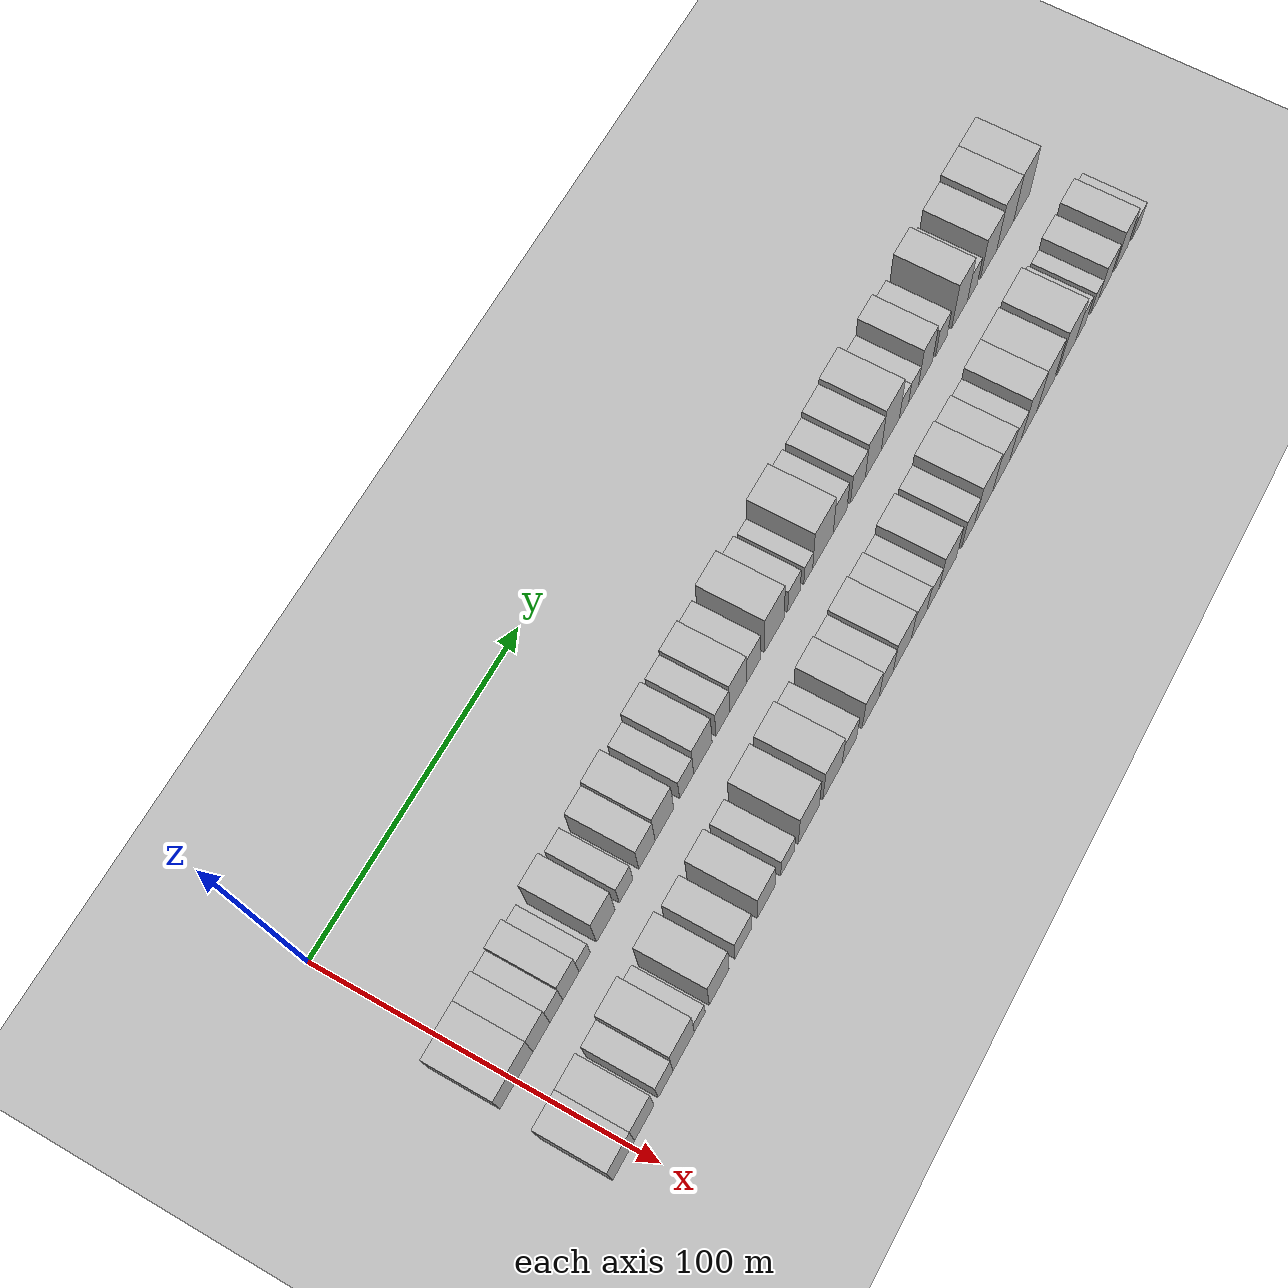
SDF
<sdf version="1.6">
 <world name="default">
  <include><name>ground_plane_1</name><uri>model://HANNAS_ground_plane</uri></include>
  <include>
   <name>ground_plane_2</name>
   <uri>model://HANNAS_ground_plane</uri>
   <pose>100 0 0  0 0 0</pose>
  </include>
  <model name="building_32">
   <static>1</static>
   <pose>50.0000 -4.1049 0 0.000000 0.000000 0.000000</pose>
   <link name="link">
    <pose>0 0 7.50 0 0 0</pose>
    <collision name="collision"><geometry><box><size>20.0000 6.8079 15.0000</size></box></geometry></collision>
    <visual name="visual">
     <cast_shadows>0</cast_shadows>
     <geometry><box><size>20.0000 6.8079 15.0000</size></box></geometry>
     <material>
      <script>
       <uri>model://HANNAS_wall/materials/scripts</uri>
       <uri>model://HANNAS_wall/materials/textures</uri>
       <name>vrc/HANNAS_wall</name>
      </script>
     </material>
    </visual>
   </link>
  </model>
  <model name="building_33">
   <static>1</static>
   <pose>50.0000 3.5767 0 0.000000 0.000000 0.000000</pose>
   <link name="link">
    <pose>0 0 9.00 0 0 0</pose>
    <collision name="collision"><geometry><box><size>20.0000 8.5552 18.0000</size></box></geometry></collision>
    <visual name="visual">
     <cast_shadows>0</cast_shadows>
     <geometry><box><size>20.0000 8.5552 18.0000</size></box></geometry>
     <material>
      <script>
       <uri>model://HANNAS_wall/materials/scripts</uri>
       <uri>model://HANNAS_wall/materials/textures</uri>
       <name>vrc/HANNAS_wall</name>
      </script>
     </material>
    </visual>
   </link>
  </model>
  <model name="building_34">
   <static>1</static>
   <pose>50.0000 11.8458 0 0.000000 0.000000 0.000000</pose>
   <link name="link">
    <pose>0 0 9.00 0 0 0</pose>
    <collision name="collision"><geometry><box><size>20.0000 7.9831 18.0000</size></box></geometry></collision>
    <visual name="visual">
     <cast_shadows>0</cast_shadows>
     <geometry><box><size>20.0000 7.9831 18.0000</size></box></geometry>
     <material>
      <script>
       <uri>model://HANNAS_wall/materials/scripts</uri>
       <uri>model://HANNAS_wall/materials/textures</uri>
       <name>vrc/HANNAS_wall</name>
      </script>
     </material>
    </visual>
   </link>
  </model>
  <model name="building_35">
   <static>1</static>
   <pose>50.0000 18.9449 0 0.000000 0.000000 0.000000</pose>
   <link name="link">
    <pose>0 0 7.50 0 0 0</pose>
    <collision name="collision"><geometry><box><size>20.0000 6.2151 15.0000</size></box></geometry></collision>
    <visual name="visual">
     <cast_shadows>0</cast_shadows>
     <geometry><box><size>20.0000 6.2151 15.0000</size></box></geometry>
     <material>
      <script>
       <uri>model://HANNAS_wall/materials/scripts</uri>
       <uri>model://HANNAS_wall/materials/textures</uri>
       <name>vrc/HANNAS_wall</name>
      </script>
     </material>
    </visual>
   </link>
  </model>
  <model name="building_36">
   <static>1</static>
   <pose>50.0000 25.9649 0 0.000000 0.000000 0.000000</pose>
   <link name="link">
    <pose>0 0 9.00 0 0 0</pose>
    <collision name="collision"><geometry><box><size>20.0000 7.8249 18.0000</size></box></geometry></collision>
    <visual name="visual">
     <cast_shadows>0</cast_shadows>
     <geometry><box><size>20.0000 7.8249 18.0000</size></box></geometry>
     <material>
      <script>
       <uri>model://HANNAS_wall/materials/scripts</uri>
       <uri>model://HANNAS_wall/materials/textures</uri>
       <name>vrc/HANNAS_wall</name>
      </script>
     </material>
    </visual>
   </link>
  </model>
  <model name="building_37">
   <static>1</static>
   <pose>50.0000 32.6095 0 0.000000 0.000000 0.000000</pose>
   <link name="link">
    <pose>0 0 6.00 0 0 0</pose>
    <collision name="collision"><geometry><box><size>20.0000 5.4643 12.0000</size></box></geometry></collision>
    <visual name="visual">
     <cast_shadows>0</cast_shadows>
     <geometry><box><size>20.0000 5.4643 12.0000</size></box></geometry>
     <material>
      <script>
       <uri>model://HANNAS_wall/materials/scripts</uri>
       <uri>model://HANNAS_wall/materials/textures</uri>
       <name>vrc/HANNAS_wall</name>
      </script>
     </material>
    </visual>
   </link>
  </model>
  <model name="building_38">
   <static>1</static>
   <pose>50.0000 42.9192 0 0.000000 0.000000 0.000000</pose>
   <link name="link">
    <pose>0 0 10.50 0 0 0</pose>
    <collision name="collision"><geometry><box><size>20.0000 9.1551 21.0000</size></box></geometry></collision>
    <visual name="visual">
     <cast_shadows>0</cast_shadows>
     <geometry><box><size>20.0000 9.1551 21.0000</size></box></geometry>
     <material>
      <script>
       <uri>model://HANNAS_wall/materials/scripts</uri>
       <uri>model://HANNAS_wall/materials/textures</uri>
       <name>vrc/HANNAS_wall</name>
      </script>
     </material>
    </visual>
   </link>
  </model>
  <model name="building_39">
   <static>1</static>
   <pose>50.0000 52.9085 0 0.000000 0.000000 0.000000</pose>
   <link name="link">
    <pose>0 0 7.50 0 0 0</pose>
    <collision name="collision"><geometry><box><size>20.0000 6.8234 15.0000</size></box></geometry></collision>
    <visual name="visual">
     <cast_shadows>0</cast_shadows>
     <geometry><box><size>20.0000 6.8234 15.0000</size></box></geometry>
     <material>
      <script>
       <uri>model://HANNAS_wall/materials/scripts</uri>
       <uri>model://HANNAS_wall/materials/textures</uri>
       <name>vrc/HANNAS_wall</name>
      </script>
     </material>
    </visual>
   </link>
  </model>
  <model name="building_40">
   <static>1</static>
   <pose>50.0000 63.4467 0 0.000000 0.000000 0.000000</pose>
   <link name="link">
    <pose>0 0 9.00 0 0 0</pose>
    <collision name="collision"><geometry><box><size>20.0000 8.2529 18.0000</size></box></geometry></collision>
    <visual name="visual">
     <cast_shadows>0</cast_shadows>
     <geometry><box><size>20.0000 8.2529 18.0000</size></box></geometry>
     <material>
      <script>
       <uri>model://HANNAS_wall/materials/scripts</uri>
       <uri>model://HANNAS_wall/materials/textures</uri>
       <name>vrc/HANNAS_wall</name>
      </script>
     </material>
    </visual>
   </link>
  </model>
  <model name="building_41">
   <static>1</static>
   <pose>50.0000 72.3110 0 0.000000 0.000000 0.000000</pose>
   <link name="link">
    <pose>0 0 10.50 0 0 0</pose>
    <collision name="collision"><geometry><box><size>20.0000 9.4759 21.0000</size></box></geometry></collision>
    <visual name="visual">
     <cast_shadows>0</cast_shadows>
     <geometry><box><size>20.0000 9.4759 21.0000</size></box></geometry>
     <material>
      <script>
       <uri>model://HANNAS_wall/materials/scripts</uri>
       <uri>model://HANNAS_wall/materials/textures</uri>
       <name>vrc/HANNAS_wall</name>
      </script>
     </material>
    </visual>
   </link>
  </model>
  <model name="building_42">
   <static>1</static>
   <pose>50.0000 83.6777 0 0.000000 0.000000 0.000000</pose>
   <link name="link">
    <pose>0 0 7.50 0 0 0</pose>
    <collision name="collision"><geometry><box><size>20.0000 7.2575 15.0000</size></box></geometry></collision>
    <visual name="visual">
     <cast_shadows>0</cast_shadows>
     <geometry><box><size>20.0000 7.2575 15.0000</size></box></geometry>
     <material>
      <script>
       <uri>model://HANNAS_wall/materials/scripts</uri>
       <uri>model://HANNAS_wall/materials/textures</uri>
       <name>vrc/HANNAS_wall</name>
      </script>
     </material>
    </visual>
   </link>
  </model>
  <model name="building_43">
   <static>1</static>
   <pose>50.0000 92.1425 0 0.000000 0.000000 0.000000</pose>
   <link name="link">
    <pose>0 0 10.50 0 0 0</pose>
    <collision name="collision"><geometry><box><size>20.0000 9.6722 21.0000</size></box></geometry></collision>
    <visual name="visual">
     <cast_shadows>0</cast_shadows>
     <geometry><box><size>20.0000 9.6722 21.0000</size></box></geometry>
     <material>
      <script>
       <uri>model://HANNAS_wall/materials/scripts</uri>
       <uri>model://HANNAS_wall/materials/textures</uri>
       <name>vrc/HANNAS_wall</name>
      </script>
     </material>
    </visual>
   </link>
  </model>
  <model name="building_44">
   <static>1</static>
   <pose>50.0000 102.6468 0 0.000000 0.000000 0.000000</pose>
   <link name="link">
    <pose>0 0 9.00 0 0 0</pose>
    <collision name="collision"><geometry><box><size>20.0000 7.3364 18.0000</size></box></geometry></collision>
    <visual name="visual">
     <cast_shadows>0</cast_shadows>
     <geometry><box><size>20.0000 7.3364 18.0000</size></box></geometry>
     <material>
      <script>
       <uri>model://HANNAS_wall/materials/scripts</uri>
       <uri>model://HANNAS_wall/materials/textures</uri>
       <name>vrc/HANNAS_wall</name>
      </script>
     </material>
    </visual>
   </link>
  </model>
  <model name="building_45">
   <static>1</static>
   <pose>50.0000 110.8877 0 0.000000 0.000000 0.000000</pose>
   <link name="link">
    <pose>0 0 10.50 0 0 0</pose>
    <collision name="collision"><geometry><box><size>20.0000 9.1454 21.0000</size></box></geometry></collision>
    <visual name="visual">
     <cast_shadows>0</cast_shadows>
     <geometry><box><size>20.0000 9.1454 21.0000</size></box></geometry>
     <material>
      <script>
       <uri>model://HANNAS_wall/materials/scripts</uri>
       <uri>model://HANNAS_wall/materials/textures</uri>
       <name>vrc/HANNAS_wall</name>
      </script>
     </material>
    </visual>
   </link>
  </model>
  <model name="building_46">
   <static>1</static>
   <pose>50.0000 119.2314 0 0.000000 0.000000 0.000000</pose>
   <link name="link">
    <pose>0 0 9.00 0 0 0</pose>
    <collision name="collision"><geometry><box><size>20.0000 7.5420 18.0000</size></box></geometry></collision>
    <visual name="visual">
     <cast_shadows>0</cast_shadows>
     <geometry><box><size>20.0000 7.5420 18.0000</size></box></geometry>
     <material>
      <script>
       <uri>model://HANNAS_wall/materials/scripts</uri>
       <uri>model://HANNAS_wall/materials/textures</uri>
       <name>vrc/HANNAS_wall</name>
      </script>
     </material>
    </visual>
   </link>
  </model>
  <model name="building_47">
   <static>1</static>
   <pose>50.0000 130.3996 0 0.000000 0.000000 0.000000</pose>
   <link name="link">
    <pose>0 0 12.00 0 0 0</pose>
    <collision name="collision"><geometry><box><size>20.0000 10.7944 24.0000</size></box></geometry></collision>
    <visual name="visual">
     <cast_shadows>0</cast_shadows>
     <geometry><box><size>20.0000 10.7944 24.0000</size></box></geometry>
     <material>
      <script>
       <uri>model://HANNAS_wall/materials/scripts</uri>
       <uri>model://HANNAS_wall/materials/textures</uri>
       <name>vrc/HANNAS_wall</name>
      </script>
     </material>
    </visual>
   </link>
  </model>
  <model name="building_48">
   <static>1</static>
   <pose>50.0000 141.2876 0 0.000000 0.000000 0.000000</pose>
   <link name="link">
    <pose>0 0 7.50 0 0 0</pose>
    <collision name="collision"><geometry><box><size>20.0000 6.9815 15.0000</size></box></geometry></collision>
    <visual name="visual">
     <cast_shadows>0</cast_shadows>
     <geometry><box><size>20.0000 6.9815 15.0000</size></box></geometry>
     <material>
      <script>
       <uri>model://HANNAS_wall/materials/scripts</uri>
       <uri>model://HANNAS_wall/materials/textures</uri>
       <name>vrc/HANNAS_wall</name>
      </script>
     </material>
    </visual>
   </link>
  </model>
  <model name="building_49">
   <static>1</static>
   <pose>50.0000 149.2749 0 0.000000 0.000000 0.000000</pose>
   <link name="link">
    <pose>0 0 6.00 0 0 0</pose>
    <collision name="collision"><geometry><box><size>20.0000 4.9933 12.0000</size></box></geometry></collision>
    <visual name="visual">
     <cast_shadows>0</cast_shadows>
     <geometry><box><size>20.0000 4.9933 12.0000</size></box></geometry>
     <material>
      <script>
       <uri>model://HANNAS_wall/materials/scripts</uri>
       <uri>model://HANNAS_wall/materials/textures</uri>
       <name>vrc/HANNAS_wall</name>
      </script>
     </material>
    </visual>
   </link>
  </model>
  <model name="building_50">
   <static>1</static>
   <pose>50.0000 157.6174 0 0.000000 0.000000 0.000000</pose>
   <link name="link">
    <pose>0 0 12.00 0 0 0</pose>
    <collision name="collision"><geometry><box><size>20.0000 11.6915 24.0000</size></box></geometry></collision>
    <visual name="visual">
     <cast_shadows>0</cast_shadows>
     <geometry><box><size>20.0000 11.6915 24.0000</size></box></geometry>
     <material>
      <script>
       <uri>model://HANNAS_wall/materials/scripts</uri>
       <uri>model://HANNAS_wall/materials/textures</uri>
       <name>vrc/HANNAS_wall</name>
      </script>
     </material>
    </visual>
   </link>
  </model>
  <model name="building_51">
   <static>1</static>
   <pose>50.0000 167.3850 0 0.000000 0.000000 0.000000</pose>
   <link name="link">
    <pose>0 0 9.00 0 0 0</pose>
    <collision name="collision"><geometry><box><size>20.0000 7.8438 18.0000</size></box></geometry></collision>
    <visual name="visual">
     <cast_shadows>0</cast_shadows>
     <geometry><box><size>20.0000 7.8438 18.0000</size></box></geometry>
     <material>
      <script>
       <uri>model://HANNAS_wall/materials/scripts</uri>
       <uri>model://HANNAS_wall/materials/textures</uri>
       <name>vrc/HANNAS_wall</name>
      </script>
     </material>
    </visual>
   </link>
  </model>
  <model name="building_52">
   <static>1</static>
   <pose>50.0000 177.6294 0 0.000000 0.000000 0.000000</pose>
   <link name="link">
    <pose>0 0 9.00 0 0 0</pose>
    <collision name="collision"><geometry><box><size>20.0000 8.6449 18.0000</size></box></geometry></collision>
    <visual name="visual">
     <cast_shadows>0</cast_shadows>
     <geometry><box><size>20.0000 8.6449 18.0000</size></box></geometry>
     <material>
      <script>
       <uri>model://HANNAS_wall/materials/scripts</uri>
       <uri>model://HANNAS_wall/materials/textures</uri>
       <name>vrc/HANNAS_wall</name>
      </script>
     </material>
    </visual>
   </link>
  </model>
  <model name="building_53">
   <static>1</static>
   <pose>50.0000 186.6931 0 0.000000 0.000000 0.000000</pose>
   <link name="link">
    <pose>0 0 10.50 0 0 0</pose>
    <collision name="collision"><geometry><box><size>20.0000 9.4825 21.0000</size></box></geometry></collision>
    <visual name="visual">
     <cast_shadows>0</cast_shadows>
     <geometry><box><size>20.0000 9.4825 21.0000</size></box></geometry>
     <material>
      <script>
       <uri>model://HANNAS_wall/materials/scripts</uri>
       <uri>model://HANNAS_wall/materials/textures</uri>
       <name>vrc/HANNAS_wall</name>
      </script>
     </material>
    </visual>
   </link>
  </model>
  <model name="building_54">
   <static>1</static>
   <pose>50.0000 196.7727 0 0.000000 0.000000 0.000000</pose>
   <link name="link">
    <pose>0 0 12.00 0 0 0</pose>
    <collision name="collision"><geometry><box><size>20.0000 10.6767 24.0000</size></box></geometry></collision>
    <visual name="visual">
     <cast_shadows>0</cast_shadows>
     <geometry><box><size>20.0000 10.6767 24.0000</size></box></geometry>
     <material>
      <script>
       <uri>model://HANNAS_wall/materials/scripts</uri>
       <uri>model://HANNAS_wall/materials/textures</uri>
       <name>vrc/HANNAS_wall</name>
      </script>
     </material>
    </visual>
   </link>
  </model>
  <model name="building_55">
   <static>1</static>
   <pose>50.0000 204.8841 0 0.000000 0.000000 0.000000</pose>
   <link name="link">
    <pose>0 0 6.00 0 0 0</pose>
    <collision name="collision"><geometry><box><size>20.0000 5.5460 12.0000</size></box></geometry></collision>
    <visual name="visual">
     <cast_shadows>0</cast_shadows>
     <geometry><box><size>20.0000 5.5460 12.0000</size></box></geometry>
     <material>
      <script>
       <uri>model://HANNAS_wall/materials/scripts</uri>
       <uri>model://HANNAS_wall/materials/textures</uri>
       <name>vrc/HANNAS_wall</name>
      </script>
     </material>
    </visual>
   </link>
  </model>
  <model name="building_56">
   <static>1</static>
   <pose>50.0000 210.6251 0 0.000000 0.000000 0.000000</pose>
   <link name="link">
    <pose>0 0 6.00 0 0 0</pose>
    <collision name="collision"><geometry><box><size>20.0000 5.9360 12.0000</size></box></geometry></collision>
    <visual name="visual">
     <cast_shadows>0</cast_shadows>
     <geometry><box><size>20.0000 5.9360 12.0000</size></box></geometry>
     <material>
      <script>
       <uri>model://HANNAS_wall/materials/scripts</uri>
       <uri>model://HANNAS_wall/materials/textures</uri>
       <name>vrc/HANNAS_wall</name>
      </script>
     </material>
    </visual>
   </link>
  </model>
  <model name="building_57">
   <static>1</static>
   <pose>50.0000 217.8418 0 0.000000 0.000000 0.000000</pose>
   <link name="link">
    <pose>0 0 10.50 0 0 0</pose>
    <collision name="collision"><geometry><box><size>20.0000 8.4974 21.0000</size></box></geometry></collision>
    <visual name="visual">
     <cast_shadows>0</cast_shadows>
     <geometry><box><size>20.0000 8.4974 21.0000</size></box></geometry>
     <material>
      <script>
       <uri>model://HANNAS_wall/materials/scripts</uri>
       <uri>model://HANNAS_wall/materials/textures</uri>
       <name>vrc/HANNAS_wall</name>
      </script>
     </material>
    </visual>
   </link>
  </model>
  <model name="building_58">
   <static>1</static>
   <pose>50.0000 227.5910 0 0.000000 0.000000 0.000000</pose>
   <link name="link">
    <pose>0 0 7.50 0 0 0</pose>
    <collision name="collision"><geometry><box><size>20.0000 7.0010 15.0000</size></box></geometry></collision>
    <visual name="visual">
     <cast_shadows>0</cast_shadows>
     <geometry><box><size>20.0000 7.0010 15.0000</size></box></geometry>
     <material>
      <script>
       <uri>model://HANNAS_wall/materials/scripts</uri>
       <uri>model://HANNAS_wall/materials/textures</uri>
       <name>vrc/HANNAS_wall</name>
      </script>
     </material>
    </visual>
   </link>
  </model>
  <model name="building_59">
   <static>1</static>
   <pose>50.0000 238.9866 0 0.000000 0.000000 0.000000</pose>
   <link name="link">
    <pose>0 0 12.00 0 0 0</pose>
    <collision name="collision"><geometry><box><size>20.0000 9.7903 24.0000</size></box></geometry></collision>
    <visual name="visual">
     <cast_shadows>0</cast_shadows>
     <geometry><box><size>20.0000 9.7903 24.0000</size></box></geometry>
     <material>
      <script>
       <uri>model://HANNAS_wall/materials/scripts</uri>
       <uri>model://HANNAS_wall/materials/textures</uri>
       <name>vrc/HANNAS_wall</name>
      </script>
     </material>
    </visual>
   </link>
  </model>
  <model name="building_60">
   <static>1</static>
   <pose>50.0000 246.9632 0 0.000000 0.000000 0.000000</pose>
   <link name="link">
    <pose>0 0 7.50 0 0 0</pose>
    <collision name="collision"><geometry><box><size>20.0000 6.1629 15.0000</size></box></geometry></collision>
    <visual name="visual">
     <cast_shadows>0</cast_shadows>
     <geometry><box><size>20.0000 6.1629 15.0000</size></box></geometry>
     <material>
      <script>
       <uri>model://HANNAS_wall/materials/scripts</uri>
       <uri>model://HANNAS_wall/materials/textures</uri>
       <name>vrc/HANNAS_wall</name>
      </script>
     </material>
    </visual>
   </link>
  </model>
  <model name="building_61">
   <static>1</static>
   <pose>50.0000 257.2589 0 0.000000 0.000000 0.000000</pose>
   <link name="link">
    <pose>0 0 10.50 0 0 0</pose>
    <collision name="collision"><geometry><box><size>20.0000 10.4286 21.0000</size></box></geometry></collision>
    <visual name="visual">
     <cast_shadows>0</cast_shadows>
     <geometry><box><size>20.0000 10.4286 21.0000</size></box></geometry>
     <material>
      <script>
       <uri>model://HANNAS_wall/materials/scripts</uri>
       <uri>model://HANNAS_wall/materials/textures</uri>
       <name>vrc/HANNAS_wall</name>
      </script>
     </material>
    </visual>
   </link>
  </model>
  <model name="building_62">
   <static>1</static>
   <pose>50.0000 267.9536 0 0.000000 0.000000 0.000000</pose>
   <link name="link">
    <pose>0 0 12.00 0 0 0</pose>
    <collision name="collision"><geometry><box><size>20.0000 10.9608 24.0000</size></box></geometry></collision>
    <visual name="visual">
     <cast_shadows>0</cast_shadows>
     <geometry><box><size>20.0000 10.9608 24.0000</size></box></geometry>
     <material>
      <script>
       <uri>model://HANNAS_wall/materials/scripts</uri>
       <uri>model://HANNAS_wall/materials/textures</uri>
       <name>vrc/HANNAS_wall</name>
      </script>
     </material>
    </visual>
   </link>
  </model>
  <model name="building_63">
   <static>1</static>
   <pose>50.0000 278.7826 0 0.000000 0.000000 0.000000</pose>
   <link name="link">
    <pose>0 0 12.00 0 0 0</pose>
    <collision name="collision"><geometry><box><size>20.0000 10.6971 24.0000</size></box></geometry></collision>
    <visual name="visual">
     <cast_shadows>0</cast_shadows>
     <geometry><box><size>20.0000 10.6971 24.0000</size></box></geometry>
     <material>
      <script>
       <uri>model://HANNAS_wall/materials/scripts</uri>
       <uri>model://HANNAS_wall/materials/textures</uri>
       <name>vrc/HANNAS_wall</name>
      </script>
     </material>
    </visual>
   </link>
  </model>
  <model name="building_95">
   <static>1</static>
   <pose>82.0000 -3.5701 0 0.000000 0.000000 0.000000</pose>
   <link name="link">
    <pose>0 0 10.50 0 0 0</pose>
    <collision name="collision"><geometry><box><size>20.0000 10.4129 21.0000</size></box></geometry></collision>
    <visual name="visual">
     <cast_shadows>0</cast_shadows>
     <geometry><box><size>20.0000 10.4129 21.0000</size></box></geometry>
     <material>
      <script>
       <uri>model://HANNAS_wall/materials/scripts</uri>
       <uri>model://HANNAS_wall/materials/textures</uri>
       <name>vrc/HANNAS_wall</name>
      </script>
     </material>
    </visual>
   </link>
  </model>
  <model name="building_96">
   <static>1</static>
   <pose>82.0000 6.3272 0 0.000000 0.000000 0.000000</pose>
   <link name="link">
    <pose>0 0 10.50 0 0 0</pose>
    <collision name="collision"><geometry><box><size>20.0000 9.3818 21.0000</size></box></geometry></collision>
    <visual name="visual">
     <cast_shadows>0</cast_shadows>
     <geometry><box><size>20.0000 9.3818 21.0000</size></box></geometry>
     <material>
      <script>
       <uri>model://HANNAS_wall/materials/scripts</uri>
       <uri>model://HANNAS_wall/materials/textures</uri>
       <name>vrc/HANNAS_wall</name>
      </script>
     </material>
    </visual>
   </link>
  </model>
  <model name="building_97">
   <static>1</static>
   <pose>82.0000 16.6407 0 0.000000 0.000000 0.000000</pose>
   <link name="link">
    <pose>0 0 9.00 0 0 0</pose>
    <collision name="collision"><geometry><box><size>20.0000 7.2453 18.0000</size></box></geometry></collision>
    <visual name="visual">
     <cast_shadows>0</cast_shadows>
     <geometry><box><size>20.0000 7.2453 18.0000</size></box></geometry>
     <material>
      <script>
       <uri>model://HANNAS_wall/materials/scripts</uri>
       <uri>model://HANNAS_wall/materials/textures</uri>
       <name>vrc/HANNAS_wall</name>
      </script>
     </material>
    </visual>
   </link>
  </model>
  <model name="building_98">
   <static>1</static>
   <pose>82.0000 25.4958 0 0.000000 0.000000 0.000000</pose>
   <link name="link">
    <pose>0 0 12.00 0 0 0</pose>
    <collision name="collision"><geometry><box><size>20.0000 10.4648 24.0000</size></box></geometry></collision>
    <visual name="visual">
     <cast_shadows>0</cast_shadows>
     <geometry><box><size>20.0000 10.4648 24.0000</size></box></geometry>
     <material>
      <script>
       <uri>model://HANNAS_wall/materials/scripts</uri>
       <uri>model://HANNAS_wall/materials/textures</uri>
       <name>vrc/HANNAS_wall</name>
      </script>
     </material>
    </visual>
   </link>
  </model>
  <model name="building_99">
   <static>1</static>
   <pose>82.0000 33.4550 0 0.000000 0.000000 0.000000</pose>
   <link name="link">
    <pose>0 0 6.00 0 0 0</pose>
    <collision name="collision"><geometry><box><size>20.0000 5.4536 12.0000</size></box></geometry></collision>
    <visual name="visual">
     <cast_shadows>0</cast_shadows>
     <geometry><box><size>20.0000 5.4536 12.0000</size></box></geometry>
     <material>
      <script>
       <uri>model://HANNAS_wall/materials/scripts</uri>
       <uri>model://HANNAS_wall/materials/textures</uri>
       <name>vrc/HANNAS_wall</name>
      </script>
     </material>
    </visual>
   </link>
  </model>
  <model name="building_100">
   <static>1</static>
   <pose>82.0000 43.1637 0 0.000000 0.000000 0.000000</pose>
   <link name="link">
    <pose>0 0 12.00 0 0 0</pose>
    <collision name="collision"><geometry><box><size>20.0000 9.9637 24.0000</size></box></geometry></collision>
    <visual name="visual">
     <cast_shadows>0</cast_shadows>
     <geometry><box><size>20.0000 9.9637 24.0000</size></box></geometry>
     <material>
      <script>
       <uri>model://HANNAS_wall/materials/scripts</uri>
       <uri>model://HANNAS_wall/materials/textures</uri>
       <name>vrc/HANNAS_wall</name>
      </script>
     </material>
    </visual>
   </link>
  </model>
  <model name="building_101">
   <static>1</static>
   <pose>82.0000 55.4075 0 0.000000 0.000000 0.000000</pose>
   <link name="link">
    <pose>0 0 9.00 0 0 0</pose>
    <collision name="collision"><geometry><box><size>20.0000 8.5238 18.0000</size></box></geometry></collision>
    <visual name="visual">
     <cast_shadows>0</cast_shadows>
     <geometry><box><size>20.0000 8.5238 18.0000</size></box></geometry>
     <material>
      <script>
       <uri>model://HANNAS_wall/materials/scripts</uri>
       <uri>model://HANNAS_wall/materials/textures</uri>
       <name>vrc/HANNAS_wall</name>
      </script>
     </material>
    </visual>
   </link>
  </model>
  <model name="building_102">
   <static>1</static>
   <pose>82.0000 67.2413 0 0.000000 0.000000 0.000000</pose>
   <link name="link">
    <pose>0 0 10.50 0 0 0</pose>
    <collision name="collision"><geometry><box><size>20.0000 9.1438 21.0000</size></box></geometry></collision>
    <visual name="visual">
     <cast_shadows>0</cast_shadows>
     <geometry><box><size>20.0000 9.1438 21.0000</size></box></geometry>
     <material>
      <script>
       <uri>model://HANNAS_wall/materials/scripts</uri>
       <uri>model://HANNAS_wall/materials/textures</uri>
       <name>vrc/HANNAS_wall</name>
      </script>
     </material>
    </visual>
   </link>
  </model>
  <model name="building_103">
   <static>1</static>
   <pose>82.0000 78.4467 0 0.000000 0.000000 0.000000</pose>
   <link name="link">
    <pose>0 0 7.50 0 0 0</pose>
    <collision name="collision"><geometry><box><size>20.0000 7.2670 15.0000</size></box></geometry></collision>
    <visual name="visual">
     <cast_shadows>0</cast_shadows>
     <geometry><box><size>20.0000 7.2670 15.0000</size></box></geometry>
     <material>
      <script>
       <uri>model://HANNAS_wall/materials/scripts</uri>
       <uri>model://HANNAS_wall/materials/textures</uri>
       <name>vrc/HANNAS_wall</name>
      </script>
     </material>
    </visual>
   </link>
  </model>
  <model name="building_104">
   <static>1</static>
   <pose>82.0000 89.6541 0 0.000000 0.000000 0.000000</pose>
   <link name="link">
    <pose>0 0 12.00 0 0 0</pose>
    <collision name="collision"><geometry><box><size>20.0000 11.1478 24.0000</size></box></geometry></collision>
    <visual name="visual">
     <cast_shadows>0</cast_shadows>
     <geometry><box><size>20.0000 11.1478 24.0000</size></box></geometry>
     <material>
      <script>
       <uri>model://HANNAS_wall/materials/scripts</uri>
       <uri>model://HANNAS_wall/materials/textures</uri>
       <name>vrc/HANNAS_wall</name>
      </script>
     </material>
    </visual>
   </link>
  </model>
  <model name="building_105">
   <static>1</static>
   <pose>82.0000 102.4390 0 0.000000 0.000000 0.000000</pose>
   <link name="link">
    <pose>0 0 12.00 0 0 0</pose>
    <collision name="collision"><geometry><box><size>20.0000 10.4221 24.0000</size></box></geometry></collision>
    <visual name="visual">
     <cast_shadows>0</cast_shadows>
     <geometry><box><size>20.0000 10.4221 24.0000</size></box></geometry>
     <material>
      <script>
       <uri>model://HANNAS_wall/materials/scripts</uri>
       <uri>model://HANNAS_wall/materials/textures</uri>
       <name>vrc/HANNAS_wall</name>
      </script>
     </material>
    </visual>
   </link>
  </model>
  <model name="building_106">
   <static>1</static>
   <pose>82.0000 111.6975 0 0.000000 0.000000 0.000000</pose>
   <link name="link">
    <pose>0 0 9.00 0 0 0</pose>
    <collision name="collision"><geometry><box><size>20.0000 8.0949 18.0000</size></box></geometry></collision>
    <visual name="visual">
     <cast_shadows>0</cast_shadows>
     <geometry><box><size>20.0000 8.0949 18.0000</size></box></geometry>
     <material>
      <script>
       <uri>model://HANNAS_wall/materials/scripts</uri>
       <uri>model://HANNAS_wall/materials/textures</uri>
       <name>vrc/HANNAS_wall</name>
      </script>
     </material>
    </visual>
   </link>
  </model>
  <model name="building_107">
   <static>1</static>
   <pose>82.0000 123.4829 0 0.000000 0.000000 0.000000</pose>
   <link name="link">
    <pose>0 0 10.50 0 0 0</pose>
    <collision name="collision"><geometry><box><size>20.0000 9.4757 21.0000</size></box></geometry></collision>
    <visual name="visual">
     <cast_shadows>0</cast_shadows>
     <geometry><box><size>20.0000 9.4757 21.0000</size></box></geometry>
     <material>
      <script>
       <uri>model://HANNAS_wall/materials/scripts</uri>
       <uri>model://HANNAS_wall/materials/textures</uri>
       <name>vrc/HANNAS_wall</name>
      </script>
     </material>
    </visual>
   </link>
  </model>
  <model name="building_108">
   <static>1</static>
   <pose>82.0000 132.1943 0 0.000000 0.000000 0.000000</pose>
   <link name="link">
    <pose>0 0 9.00 0 0 0</pose>
    <collision name="collision"><geometry><box><size>20.0000 7.9472 18.0000</size></box></geometry></collision>
    <visual name="visual">
     <cast_shadows>0</cast_shadows>
     <geometry><box><size>20.0000 7.9472 18.0000</size></box></geometry>
     <material>
      <script>
       <uri>model://HANNAS_wall/materials/scripts</uri>
       <uri>model://HANNAS_wall/materials/textures</uri>
       <name>vrc/HANNAS_wall</name>
      </script>
     </material>
    </visual>
   </link>
  </model>
  <model name="building_109">
   <static>1</static>
   <pose>82.0000 141.4044 0 0.000000 0.000000 0.000000</pose>
   <link name="link">
    <pose>0 0 10.50 0 0 0</pose>
    <collision name="collision"><geometry><box><size>20.0000 10.4730 21.0000</size></box></geometry></collision>
    <visual name="visual">
     <cast_shadows>0</cast_shadows>
     <geometry><box><size>20.0000 10.4730 21.0000</size></box></geometry>
     <material>
      <script>
       <uri>model://HANNAS_wall/materials/scripts</uri>
       <uri>model://HANNAS_wall/materials/textures</uri>
       <name>vrc/HANNAS_wall</name>
      </script>
     </material>
    </visual>
   </link>
  </model>
  <model name="building_110">
   <static>1</static>
   <pose>82.0000 151.1362 0 0.000000 0.000000 0.000000</pose>
   <link name="link">
    <pose>0 0 9.00 0 0 0</pose>
    <collision name="collision"><geometry><box><size>20.0000 8.9907 18.0000</size></box></geometry></collision>
    <visual name="visual">
     <cast_shadows>0</cast_shadows>
     <geometry><box><size>20.0000 8.9907 18.0000</size></box></geometry>
     <material>
      <script>
       <uri>model://HANNAS_wall/materials/scripts</uri>
       <uri>model://HANNAS_wall/materials/textures</uri>
       <name>vrc/HANNAS_wall</name>
      </script>
     </material>
    </visual>
   </link>
  </model>
  <model name="building_111">
   <static>1</static>
   <pose>82.0000 159.2023 0 0.000000 0.000000 0.000000</pose>
   <link name="link">
    <pose>0 0 7.50 0 0 0</pose>
    <collision name="collision"><geometry><box><size>20.0000 7.1414 15.0000</size></box></geometry></collision>
    <visual name="visual">
     <cast_shadows>0</cast_shadows>
     <geometry><box><size>20.0000 7.1414 15.0000</size></box></geometry>
     <material>
      <script>
       <uri>model://HANNAS_wall/materials/scripts</uri>
       <uri>model://HANNAS_wall/materials/textures</uri>
       <name>vrc/HANNAS_wall</name>
      </script>
     </material>
    </visual>
   </link>
  </model>
  <model name="building_112">
   <static>1</static>
   <pose>82.0000 167.8826 0 0.000000 0.000000 0.000000</pose>
   <link name="link">
    <pose>0 0 10.50 0 0 0</pose>
    <collision name="collision"><geometry><box><size>20.0000 10.2192 21.0000</size></box></geometry></collision>
    <visual name="visual">
     <cast_shadows>0</cast_shadows>
     <geometry><box><size>20.0000 10.2192 21.0000</size></box></geometry>
     <material>
      <script>
       <uri>model://HANNAS_wall/materials/scripts</uri>
       <uri>model://HANNAS_wall/materials/textures</uri>
       <name>vrc/HANNAS_wall</name>
      </script>
     </material>
    </visual>
   </link>
  </model>
  <model name="building_113">
   <static>1</static>
   <pose>82.0000 179.8512 0 0.000000 0.000000 0.000000</pose>
   <link name="link">
    <pose>0 0 9.00 0 0 0</pose>
    <collision name="collision"><geometry><box><size>20.0000 7.7181 18.0000</size></box></geometry></collision>
    <visual name="visual">
     <cast_shadows>0</cast_shadows>
     <geometry><box><size>20.0000 7.7181 18.0000</size></box></geometry>
     <material>
      <script>
       <uri>model://HANNAS_wall/materials/scripts</uri>
       <uri>model://HANNAS_wall/materials/textures</uri>
       <name>vrc/HANNAS_wall</name>
      </script>
     </material>
    </visual>
   </link>
  </model>
  <model name="building_114">
   <static>1</static>
   <pose>82.0000 189.3272 0 0.000000 0.000000 0.000000</pose>
   <link name="link">
    <pose>0 0 12.00 0 0 0</pose>
    <collision name="collision"><geometry><box><size>20.0000 11.2339 24.0000</size></box></geometry></collision>
    <visual name="visual">
     <cast_shadows>0</cast_shadows>
     <geometry><box><size>20.0000 11.2339 24.0000</size></box></geometry>
     <material>
      <script>
       <uri>model://HANNAS_wall/materials/scripts</uri>
       <uri>model://HANNAS_wall/materials/textures</uri>
       <name>vrc/HANNAS_wall</name>
      </script>
     </material>
    </visual>
   </link>
  </model>
  <model name="building_115">
   <static>1</static>
   <pose>82.0000 200.0511 0 0.000000 0.000000 0.000000</pose>
   <link name="link">
    <pose>0 0 10.50 0 0 0</pose>
    <collision name="collision"><geometry><box><size>20.0000 10.2138 21.0000</size></box></geometry></collision>
    <visual name="visual">
     <cast_shadows>0</cast_shadows>
     <geometry><box><size>20.0000 10.2138 21.0000</size></box></geometry>
     <material>
      <script>
       <uri>model://HANNAS_wall/materials/scripts</uri>
       <uri>model://HANNAS_wall/materials/textures</uri>
       <name>vrc/HANNAS_wall</name>
      </script>
     </material>
    </visual>
   </link>
  </model>
  <model name="building_116">
   <static>1</static>
   <pose>82.0000 208.8052 0 0.000000 0.000000 0.000000</pose>
   <link name="link">
    <pose>0 0 9.00 0 0 0</pose>
    <collision name="collision"><geometry><box><size>20.0000 7.2945 18.0000</size></box></geometry></collision>
    <visual name="visual">
     <cast_shadows>0</cast_shadows>
     <geometry><box><size>20.0000 7.2945 18.0000</size></box></geometry>
     <material>
      <script>
       <uri>model://HANNAS_wall/materials/scripts</uri>
       <uri>model://HANNAS_wall/materials/textures</uri>
       <name>vrc/HANNAS_wall</name>
      </script>
     </material>
    </visual>
   </link>
  </model>
  <model name="building_117">
   <static>1</static>
   <pose>82.0000 217.3518 0 0.000000 0.000000 0.000000</pose>
   <link name="link">
    <pose>0 0 12.00 0 0 0</pose>
    <collision name="collision"><geometry><box><size>20.0000 9.7986 24.0000</size></box></geometry></collision>
    <visual name="visual">
     <cast_shadows>0</cast_shadows>
     <geometry><box><size>20.0000 9.7986 24.0000</size></box></geometry>
     <material>
      <script>
       <uri>model://HANNAS_wall/materials/scripts</uri>
       <uri>model://HANNAS_wall/materials/textures</uri>
       <name>vrc/HANNAS_wall</name>
      </script>
     </material>
    </visual>
   </link>
  </model>
  <model name="building_118">
   <static>1</static>
   <pose>82.0000 227.7233 0 0.000000 0.000000 0.000000</pose>
   <link name="link">
    <pose>0 0 12.00 0 0 0</pose>
    <collision name="collision"><geometry><box><size>20.0000 10.9446 24.0000</size></box></geometry></collision>
    <visual name="visual">
     <cast_shadows>0</cast_shadows>
     <geometry><box><size>20.0000 10.9446 24.0000</size></box></geometry>
     <material>
      <script>
       <uri>model://HANNAS_wall/materials/scripts</uri>
       <uri>model://HANNAS_wall/materials/textures</uri>
       <name>vrc/HANNAS_wall</name>
      </script>
     </material>
    </visual>
   </link>
  </model>
  <model name="building_119">
   <static>1</static>
   <pose>82.0000 241.1504 0 0.000000 0.000000 0.000000</pose>
   <link name="link">
    <pose>0 0 12.00 0 0 0</pose>
    <collision name="collision"><geometry><box><size>20.0000 11.9094 24.0000</size></box></geometry></collision>
    <visual name="visual">
     <cast_shadows>0</cast_shadows>
     <geometry><box><size>20.0000 11.9094 24.0000</size></box></geometry>
     <material>
      <script>
       <uri>model://HANNAS_wall/materials/scripts</uri>
       <uri>model://HANNAS_wall/materials/textures</uri>
       <name>vrc/HANNAS_wall</name>
      </script>
     </material>
    </visual>
   </link>
  </model>
  <model name="building_120">
   <static>1</static>
   <pose>82.0000 250.4237 0 0.000000 0.000000 0.000000</pose>
   <link name="link">
    <pose>0 0 7.50 0 0 0</pose>
    <collision name="collision"><geometry><box><size>20.0000 6.6374 15.0000</size></box></geometry></collision>
    <visual name="visual">
     <cast_shadows>0</cast_shadows>
     <geometry><box><size>20.0000 6.6374 15.0000</size></box></geometry>
     <material>
      <script>
       <uri>model://HANNAS_wall/materials/scripts</uri>
       <uri>model://HANNAS_wall/materials/textures</uri>
       <name>vrc/HANNAS_wall</name>
      </script>
     </material>
    </visual>
   </link>
  </model>
  <model name="building_121">
   <static>1</static>
   <pose>82.0000 259.1941 0 0.000000 0.000000 0.000000</pose>
   <link name="link">
    <pose>0 0 6.00 0 0 0</pose>
    <collision name="collision"><geometry><box><size>20.0000 4.9033 12.0000</size></box></geometry></collision>
    <visual name="visual">
     <cast_shadows>0</cast_shadows>
     <geometry><box><size>20.0000 4.9033 12.0000</size></box></geometry>
     <material>
      <script>
       <uri>model://HANNAS_wall/materials/scripts</uri>
       <uri>model://HANNAS_wall/materials/textures</uri>
       <name>vrc/HANNAS_wall</name>
      </script>
     </material>
    </visual>
   </link>
  </model>
  <model name="building_122">
   <static>1</static>
   <pose>82.0000 265.9486 0 0.000000 0.000000 0.000000</pose>
   <link name="link">
    <pose>0 0 9.00 0 0 0</pose>
    <collision name="collision"><geometry><box><size>20.0000 8.6056 18.0000</size></box></geometry></collision>
    <visual name="visual">
     <cast_shadows>0</cast_shadows>
     <geometry><box><size>20.0000 8.6056 18.0000</size></box></geometry>
     <material>
      <script>
       <uri>model://HANNAS_wall/materials/scripts</uri>
       <uri>model://HANNAS_wall/materials/textures</uri>
       <name>vrc/HANNAS_wall</name>
      </script>
     </material>
    </visual>
   </link>
  </model>
  <model name="building_123">
   <static>1</static>
   <pose>82.0000 276.7387 0 0.000000 0.000000 0.000000</pose>
   <link name="link">
    <pose>0 0 10.50 0 0 0</pose>
    <collision name="collision"><geometry><box><size>20.0000 8.9747 21.0000</size></box></geometry></collision>
    <visual name="visual">
     <cast_shadows>0</cast_shadows>
     <geometry><box><size>20.0000 8.9747 21.0000</size></box></geometry>
     <material>
      <script>
       <uri>model://HANNAS_wall/materials/scripts</uri>
       <uri>model://HANNAS_wall/materials/textures</uri>
       <name>vrc/HANNAS_wall</name>
      </script>
     </material>
    </visual>
   </link>
  </model>
  <model name="building_124">
   <static>1</static>
   <pose>82.0000 287.0797 0 0.000000 0.000000 0.000000</pose>
   <link name="link">
    <pose>0 0 6.00 0 0 0</pose>
    <collision name="collision"><geometry><box><size>20.0000 5.7073 12.0000</size></box></geometry></collision>
    <visual name="visual">
     <cast_shadows>0</cast_shadows>
     <geometry><box><size>20.0000 5.7073 12.0000</size></box></geometry>
     <material>
      <script>
       <uri>model://HANNAS_wall/materials/scripts</uri>
       <uri>model://HANNAS_wall/materials/textures</uri>
       <name>vrc/HANNAS_wall</name>
      </script>
     </material>
    </visual>
   </link>
  </model>
 </world>
</sdf>
